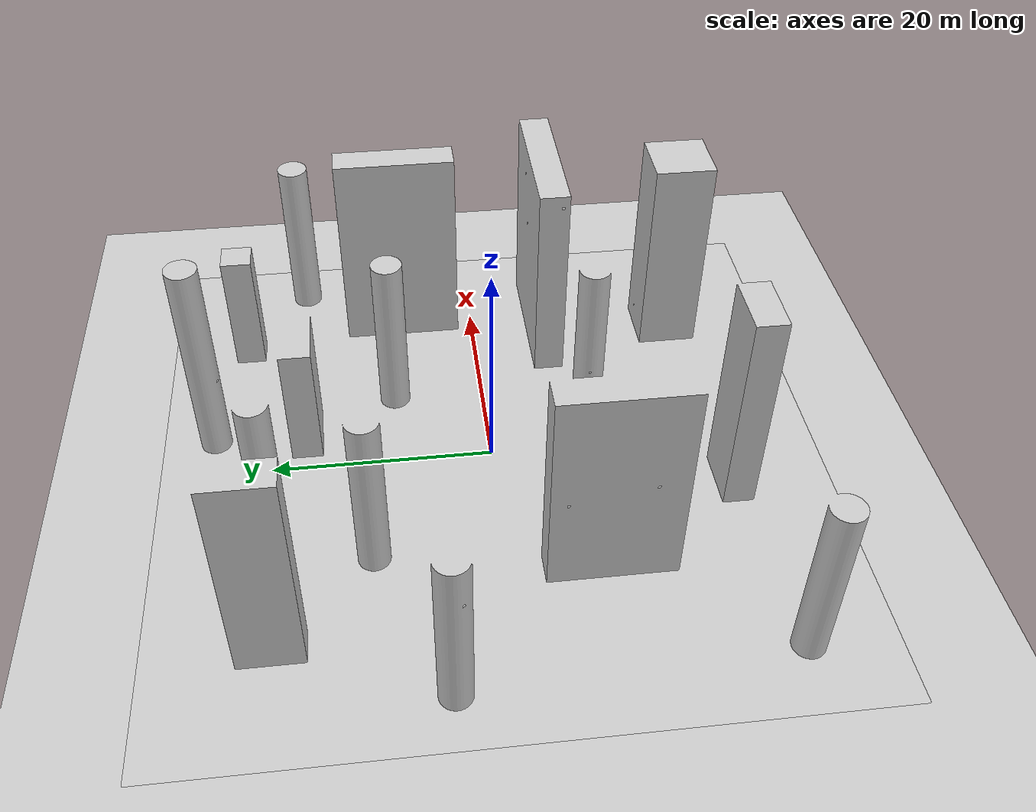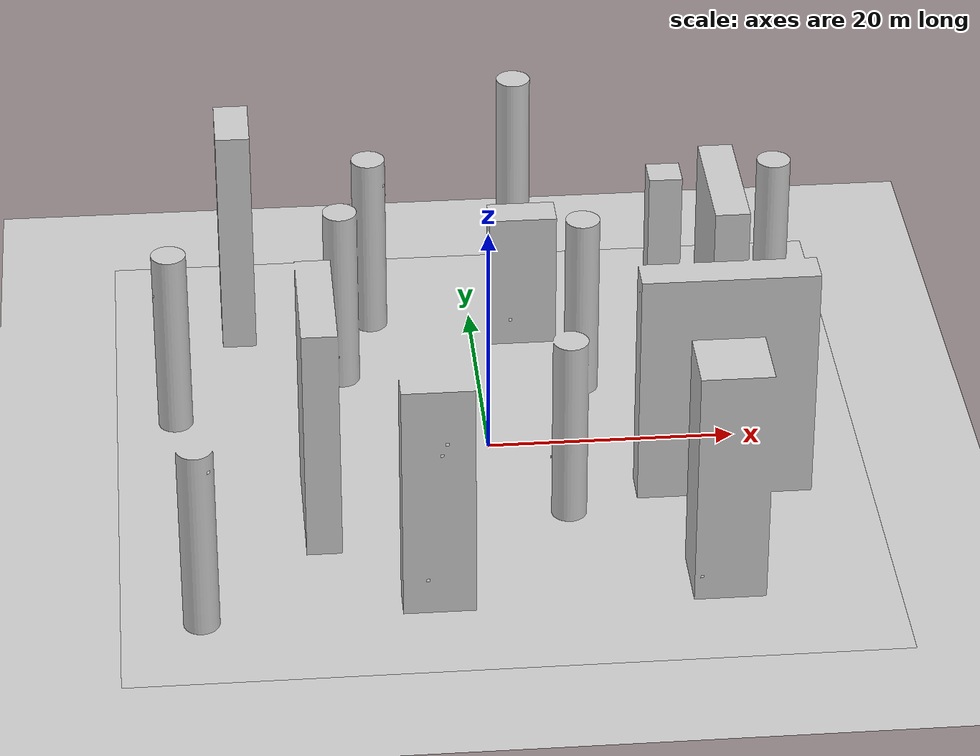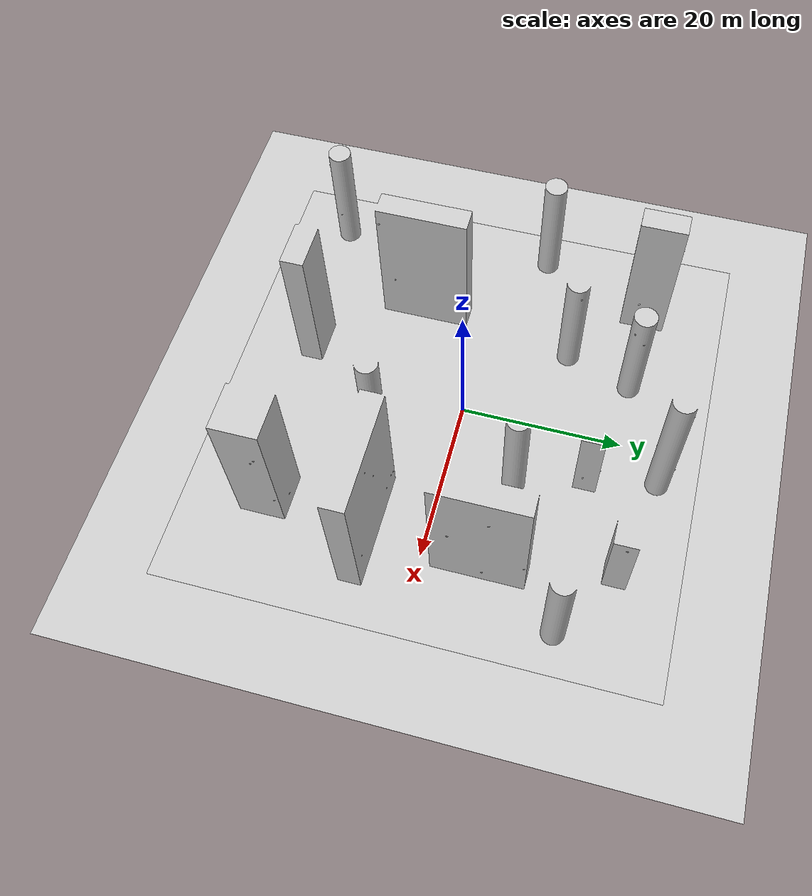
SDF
<?xml version="1.0" ?>
<sdf version="1.9">
  <world name="basic_1_world">
    <physics type="ode">
      <max_step_size>0.001</max_step_size>
      <real_time_factor>1.0</real_time_factor>
      <real_time_update_rate>1000</real_time_update_rate>
    </physics>
    <plugin name='gz::sim::systems::Physics' filename='libgz-sim-physics-system.so'/>
    <plugin name='gz::sim::systems::UserCommands' filename='libgz-sim-user-commands-system.so'/>
    <plugin name='gz::sim::systems::SceneBroadcaster' filename='libgz-sim-scene-broadcaster-system.so'/>
    <plugin name='gz::sim::systems::Contact' filename='libgz-sim-contact-system.so'/>
    <plugin name='gz::sim::systems::Imu' filename='libgz-sim-imu-system.so'/>
    <plugin name='gz::sim::systems::AirPressure' filename='libgz-sim-air-pressure-system.so'/>
    <plugin name='gz::sim::systems::Sensors' filename='libgz-sim-sensors-system.so'>
      <render_engine>ogre2</render_engine>
    </plugin>
    <gravity>0 0 -9.80665</gravity>
    <magnetic_field>6e-06 2.3e-05 -4.2e-05</magnetic_field>
    <atmosphere type='adiabatic'/>
    <scene>
      <grid>false</grid>
      <ambient>0.4 0.4 0.4 1</ambient>
      <background>0.7 0.7 0.7 1</background>
      <shadows>false</shadows>
    </scene>
    <model name="ground_plane">
      <pose>0 0 0 0 0 0</pose>
      <static>true</static>
      <link name="link">
        <collision name="collision">
          <geometry>
            <plane>
              <normal>0 0 1</normal>
              <size>60 60</size>
            </plane>
          </geometry>
        </collision>
        <visual name="visual">
          <geometry>
            <plane>
              <normal>0 0 1</normal>
              <size>60 60</size>
            </plane>
          </geometry>
          <material>
            <ambient>0.8 0.8 0.8 1</ambient>
            <diffuse>0.8 0.8 0.8 1</diffuse>
            <specular>0.8 0.8 0.8 1</specular>
          </material>
        </visual>
      </link>
    </model>
    <include>
      <pose>0 0 0 0 0 0</pose>
      <uri>model://basic_1</uri>
    </include>
    <include>
      <pose>12.702428654271504 -5.499999904632569 3.834910450213693 1.5707963267948966 0.0 3.141592653589793</pose>
      <uri>model://aruco_markers/aruco_marker_0001</uri>
    </include>
    <include>
      <pose>-26.53677144946368 4.9341911974812005 12.610715757542472 1.5707963267948966 0.0 -0.9827937232473292</pose>
      <uri>model://aruco_markers/aruco_marker_0002</uri>
    </include>
    <include>
      <pose>19.700000381469728 -18.603499007571074 13.819730767487563 1.5707963267948966 0.0 1.5707963267948966</pose>
      <uri>model://aruco_markers/aruco_marker_0003</uri>
    </include>
    <include>
      <pose>20.99147220376794 12.69999942779541 10.983474807742727 1.5707963267948966 0.0 3.141592653589793</pose>
      <uri>model://aruco_markers/aruco_marker_0004</uri>
    </include>
    <include>
      <pose>-22.818389020015463 -23.52552216607276 14.608251656985942 1.5707963267948968 0.0 0.5880026035475676</pose>
      <uri>model://aruco_markers/aruco_marker_0005</uri>
    </include>
    <include>
      <pose>19.10943586744999 -8.499999618530273 2.4491975920256004 1.5707963267948966 0.0 0.0</pose>
      <uri>model://aruco_markers/aruco_marker_0006</uri>
    </include>
    <include>
      <pose>7.1 16.400553896175786 3.1776356632876643 1.5707963267948966 0.0 1.5707963267948966</pose>
      <uri>model://aruco_markers/aruco_marker_0007</uri>
    </include>
    <include>
      <pose>-18.09999885559082 18.767426741719262 4.922351365103365 1.5707963267948966 0.0 1.5707963267948966</pose>
      <uri>model://aruco_markers/aruco_marker_0008</uri>
    </include>
    <include>
      <pose>-19.201761697927825 22.499999618530275 8.43506295016884 1.5707963267948966 0.0 3.141592653589793</pose>
      <uri>model://aruco_markers/aruco_marker_0010</uri>
    </include>
    <include>
      <pose>14.298835450998613 -5.499999904632569 3.8692448478026686 1.5707963267948966 0.0 3.141592653589793</pose>
      <uri>model://aruco_markers/aruco_marker_0011</uri>
    </include>
    <include>
      <pose>-9.882107016824866 11.901128605276266 14.594596158033001 1.5707963267948968 0.0 2.1587989303424644</pose>
      <uri>model://aruco_markers/aruco_marker_0012</uri>
    </include>
    <include>
      <pose>23.723363083169858 -5.499999904632569 5.486517175097797 1.5707963267948966 0.0 3.141592653589793</pose>
      <uri>model://aruco_markers/aruco_marker_0013</uri>
    </include>
    <include>
      <pose>18.09999885559082 8.913116619907875 7.057517749638019 1.5707963267948966 0.0 -1.5707963267948966</pose>
      <uri>model://aruco_markers/aruco_marker_0014</uri>
    </include>
    <include>
      <pose>21.1 8.153007009837204 15.505783391752267 1.5707963267948966 0.0 1.5707963267948966</pose>
      <uri>model://aruco_markers/aruco_marker_0015</uri>
    </include>
    <include>
      <pose>19.353854124921856 -5.499999904632569 17.581517980715333 1.5707963267948966 0.0 3.141592653589793</pose>
      <uri>model://aruco_markers/aruco_marker_0016</uri>
    </include>
    <include>
      <pose>14.557295467470183 -22.499999618530275 2.1794189158852433 1.5707963267948966 0.0 0.0</pose>
      <uri>model://aruco_markers/aruco_marker_0017</uri>
    </include>
    <include>
      <pose>-7.13260163215342 18.804402123010178 13.904069106795495 1.5707963267948966 0.0 0.9827937232473292</pose>
      <uri>model://aruco_markers/aruco_marker_0018</uri>
    </include>
    <include>
      <pose>21.1 12.277022506683162 6.201933181673578 1.5707963267948966 0.0 1.5707963267948966</pose>
      <uri>model://aruco_markers/aruco_marker_0019</uri>
    </include>
    <include>
      <pose>11.099999809265137 -7.752108856371327 18.84838194785489 1.5707963267948966 0.0 -1.5707963267948966</pose>
      <uri>model://aruco_markers/aruco_marker_0020</uri>
    </include>
    <include>
      <pose>11.929633547779321 -5.499999904632569 3.1640558915868824 1.5707963267948966 0.0 3.141592653589793</pose>
      <uri>model://aruco_markers/aruco_marker_0021</uri>
    </include>
    <include>
      <pose>21.1 3.6323154182830573 10.27629951566302 1.5707963267948966 0.0 1.5707963267948966</pose>
      <uri>model://aruco_markers/aruco_marker_0022</uri>
    </include>
    <include>
      <pose>-15.499999618530271 -4.257232308638194 9.26128922000307 1.5707963267948966 0.0 -1.5707963267948966</pose>
      <uri>model://aruco_markers/aruco_marker_0023</uri>
    </include>
    <include>
      <pose>-18.9312177660708 22.49999961853028 16.022186943400335 1.5707963267948966 0.0 3.141592653589793</pose>
      <uri>model://aruco_markers/aruco_marker_0024</uri>
    </include>
    <include>
      <pose>4.924056031994447 26.506129948762762 18.494969219672548 1.5707963267948966 0.0 2.677945044588987</pose>
      <uri>model://aruco_markers/aruco_marker_0026</uri>
    </include>
    <include>
      <pose>19.700000381469728 -17.27745498910447 5.160958973101901 1.5707963267948966 0.0 1.5707963267948966</pose>
      <uri>model://aruco_markers/aruco_marker_0027</uri>
    </include>
    <include>
      <pose>17.224894781155804 -16.699999237060545 2.3724380367846685 1.5707963267948966 0.0 3.141592653589793</pose>
      <uri>model://aruco_markers/aruco_marker_0029</uri>
    </include>
    <include>
      <pose>20.564278555176962 1.299999976158142 5.942494058182161 1.5707963267948966 0.0 0.0</pose>
      <uri>model://aruco_markers/aruco_marker_0030</uri>
    </include>
    <include>
      <pose>-5.316972592323724 -22.499999618530275 14.430866982960726 1.5707963267948966 0.0 0.0</pose>
      <uri>model://aruco_markers/aruco_marker_0032</uri>
    </include>
    <include>
      <pose>19.700000381469728 -18.15992895911144 14.594096745352713 1.5707963267948966 0.0 1.5707963267948966</pose>
      <uri>model://aruco_markers/aruco_marker_0033</uri>
    </include>
    <include>
      <pose>17.46705174015501 -5.499999904632569 13.124102394569338 1.5707963267948966 0.0 3.141592653589793</pose>
      <uri>model://aruco_markers/aruco_marker_0034</uri>
    </include>
    <include>
      <pose>4.645832583213066 26.624716497688866 5.558539600898748 1.5707963267948966 0.0 2.9441970937399127</pose>
      <uri>model://aruco_markers/aruco_marker_0035</uri>
    </include>
    <include>
      <pose>-4.946621592750457 -22.499999618530275 15.397087786295597 1.5707963267948966 0.0 0.0</pose>
      <uri>model://aruco_markers/aruco_marker_0036</uri>
    </include>
    <include>
      <pose>-6.980662959961518 20.064769686908686 12.302556096100915 1.5707963267948966 0.0 1.8157749899217608</pose>
      <uri>model://aruco_markers/aruco_marker_0037</uri>
    </include>
    <include>
      <pose>3.5041945770188554 23.87876843324463 8.238774175457461 1.5707963267948966 0.0 -0.46364760900080615</pose>
      <uri>model://aruco_markers/aruco_marker_0039</uri>
    </include>
    <include>
      <pose>-6.4818630962771975 -22.499999618530275 3.0664013484576986 1.5707963267948966 0.0 0.0</pose>
      <uri>model://aruco_markers/aruco_marker_0040</uri>
    </include>
    <include>
      <pose>6.117792887831811 18.29999885559082 4.016417571415747 1.5707963267948966 0.0 3.141592653589793</pose>
      <uri>model://aruco_markers/aruco_marker_0041</uri>
    </include>
    <include>
      <pose>18.29999885559082 22.627535466989926 10.937367417394455 1.5707963267948966 0.0 1.5707963267948966</pose>
      <uri>model://aruco_markers/aruco_marker_0042</uri>
    </include>
    <include>
      <pose>-12.49999942779541 -13.644215019007182 17.81908890200153 1.5707963267948966 0.0 1.5707963267948966</pose>
      <uri>model://aruco_markers/aruco_marker_0043</uri>
    </include>
    <include>
      <pose>4.1140905462170325 -9.656935313712752 5.271799122211732 1.5707963267948966 0.0 -1.5707963267948966</pose>
      <uri>model://aruco_markers/aruco_marker_0045</uri>
    </include>
    <include>
      <pose>21.099999999999998 7.574361814627923 2.2211515966081987 1.5707963267948966 0.0 1.5707963267948966</pose>
      <uri>model://aruco_markers/aruco_marker_0046</uri>
    </include>
    <include>
      <pose>-22.322504916482565 -22.62849604905869 5.636519386294875 1.5707963267948966 0.0 1.5707963267948966</pose>
      <uri>model://aruco_markers/aruco_marker_0047</uri>
    </include>
    <include>
      <pose>-12.499999427795409 -12.135182693150647 7.1635394824655965 1.5707963267948966 0.0 1.5707963267948966</pose>
      <uri>model://aruco_markers/aruco_marker_0048</uri>
    </include>
    <include>
      <pose>3.16218679690534 15.299999618530276 2.3903082238348965 1.5707963267948966 0.0 0.0</pose>
      <uri>model://aruco_markers/aruco_marker_0049</uri>
    </include>
    <include>
      <pose>-15.499999618530271 -11.29807843793042 10.58887316288271 1.5707963267948966 0.0 -1.5707963267948966</pose>
      <uri>model://aruco_markers/aruco_marker_0050</uri>
    </include>
    <light type="directional" name="sun">
      <cast_shadows>false</cast_shadows>
      <pose>0 0 100 0 0 0</pose>
      <diffuse>0.8 0.8 0.8 1</diffuse>
      <specular>0.2 0.2 0.2 1</specular>
      <attenuation>
        <range>1000</range>
        <constant>0.9</constant>
        <linear>0.01</linear>
        <quadratic>0.001</quadratic>
      </attenuation>
      <direction>-0.5 0.1 -0.9</direction>
    </light>
  </world>
</sdf>

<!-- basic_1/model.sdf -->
<sdf version="1.9">
  <model name="basic_1">
    <static>true</static>
    <link name="link">
      <collision name="collision">
        <geometry>
          <mesh>
            <uri>model://basic_1/meshes/basic_1.stl</uri>
          </mesh>
        </geometry>
      </collision>

      <!-- Attach collision sensor -->
      <sensor name="contact_sensor" type="contact">
        <always_on>1</always_on>
        <update_rate>30</update_rate>
        <contact>
          <collision>collision</collision>
        </contact>
      </sensor>

      <visual name="visual">
        <geometry>
          <mesh>
            <uri>model://basic_1/meshes/basic_1.stl</uri>
          </mesh>
        </geometry>
        <material>
            <ambient>0.8 0.8 0.8 1</ambient>
            <diffuse>0.8 0.8 0.8 1</diffuse>
            <specular>0.8 0.8 0.8 1</specular>
        </material>
      </visual>
    </link>
  </model>
</sdf>

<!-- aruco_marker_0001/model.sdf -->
<sdf version="1.9">
  <model name="aruco_marker_0001">
    <static>true</static>
    <link name="link">
      <visual name="aruco_marker_0001_vis">
        <pose>0 0 0 0 0 0</pose>
        <geometry>
          <plane>
            <normal>0 0 1</normal>
            <size>0.25 0.25</size>
          </plane>
        </geometry>
        <material>
          <pbr>
            <metal>
              <albedo_map>marker_0001.png</albedo_map>
              <metalness>0.0</metalness>
            </metal>
          </pbr>
          <ambient>1 1 1 1</ambient>
          <diffuse>1 1 1 1</diffuse>
          <specular>0 0 0 1</specular>
        </material>
      </visual>
    </link>
  </model>
</sdf>

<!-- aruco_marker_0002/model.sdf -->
<sdf version="1.9">
  <model name="aruco_marker_0002">
    <static>true</static>
    <link name="link">
      <visual name="aruco_marker_0002_vis">
        <pose>0 0 0 0 0 0</pose>
        <geometry>
          <plane>
            <normal>0 0 1</normal>
            <size>0.25 0.25</size>
          </plane>
        </geometry>
        <material>
          <pbr>
            <metal>
              <albedo_map>marker_0002.png</albedo_map>
              <metalness>0.0</metalness>
            </metal>
          </pbr>
          <ambient>1 1 1 1</ambient>
          <diffuse>1 1 1 1</diffuse>
          <specular>0 0 0 1</specular>
        </material>
      </visual>
    </link>
  </model>
</sdf>

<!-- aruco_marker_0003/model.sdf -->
<sdf version="1.9">
  <model name="aruco_marker_0003">
    <static>true</static>
    <link name="link">
      <visual name="aruco_marker_0003_vis">
        <pose>0 0 0 0 0 0</pose>
        <geometry>
          <plane>
            <normal>0 0 1</normal>
            <size>0.25 0.25</size>
          </plane>
        </geometry>
        <material>
          <pbr>
            <metal>
              <albedo_map>marker_0003.png</albedo_map>
              <metalness>0.0</metalness>
            </metal>
          </pbr>
          <ambient>1 1 1 1</ambient>
          <diffuse>1 1 1 1</diffuse>
          <specular>0 0 0 1</specular>
        </material>
      </visual>
    </link>
  </model>
</sdf>

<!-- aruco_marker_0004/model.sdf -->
<sdf version="1.9">
  <model name="aruco_marker_0004">
    <static>true</static>
    <link name="link">
      <visual name="aruco_marker_0004_vis">
        <pose>0 0 0 0 0 0</pose>
        <geometry>
          <plane>
            <normal>0 0 1</normal>
            <size>0.25 0.25</size>
          </plane>
        </geometry>
        <material>
          <pbr>
            <metal>
              <albedo_map>marker_0004.png</albedo_map>
              <metalness>0.0</metalness>
            </metal>
          </pbr>
          <ambient>1 1 1 1</ambient>
          <diffuse>1 1 1 1</diffuse>
          <specular>0 0 0 1</specular>
        </material>
      </visual>
    </link>
  </model>
</sdf>

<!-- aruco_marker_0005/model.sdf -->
<sdf version="1.9">
  <model name="aruco_marker_0005">
    <static>true</static>
    <link name="link">
      <visual name="aruco_marker_0005_vis">
        <pose>0 0 0 0 0 0</pose>
        <geometry>
          <plane>
            <normal>0 0 1</normal>
            <size>0.25 0.25</size>
          </plane>
        </geometry>
        <material>
          <pbr>
            <metal>
              <albedo_map>marker_0005.png</albedo_map>
              <metalness>0.0</metalness>
            </metal>
          </pbr>
          <ambient>1 1 1 1</ambient>
          <diffuse>1 1 1 1</diffuse>
          <specular>0 0 0 1</specular>
        </material>
      </visual>
    </link>
  </model>
</sdf>

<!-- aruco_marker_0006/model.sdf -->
<sdf version="1.9">
  <model name="aruco_marker_0006">
    <static>true</static>
    <link name="link">
      <visual name="aruco_marker_0006_vis">
        <pose>0 0 0 0 0 0</pose>
        <geometry>
          <plane>
            <normal>0 0 1</normal>
            <size>0.25 0.25</size>
          </plane>
        </geometry>
        <material>
          <pbr>
            <metal>
              <albedo_map>marker_0006.png</albedo_map>
              <metalness>0.0</metalness>
            </metal>
          </pbr>
          <ambient>1 1 1 1</ambient>
          <diffuse>1 1 1 1</diffuse>
          <specular>0 0 0 1</specular>
        </material>
      </visual>
    </link>
  </model>
</sdf>

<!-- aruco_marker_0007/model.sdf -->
<sdf version="1.9">
  <model name="aruco_marker_0007">
    <static>true</static>
    <link name="link">
      <visual name="aruco_marker_0007_vis">
        <pose>0 0 0 0 0 0</pose>
        <geometry>
          <plane>
            <normal>0 0 1</normal>
            <size>0.25 0.25</size>
          </plane>
        </geometry>
        <material>
          <pbr>
            <metal>
              <albedo_map>marker_0007.png</albedo_map>
              <metalness>0.0</metalness>
            </metal>
          </pbr>
          <ambient>1 1 1 1</ambient>
          <diffuse>1 1 1 1</diffuse>
          <specular>0 0 0 1</specular>
        </material>
      </visual>
    </link>
  </model>
</sdf>

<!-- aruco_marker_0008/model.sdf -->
<sdf version="1.9">
  <model name="aruco_marker_0008">
    <static>true</static>
    <link name="link">
      <visual name="aruco_marker_0008_vis">
        <pose>0 0 0 0 0 0</pose>
        <geometry>
          <plane>
            <normal>0 0 1</normal>
            <size>0.25 0.25</size>
          </plane>
        </geometry>
        <material>
          <pbr>
            <metal>
              <albedo_map>marker_0008.png</albedo_map>
              <metalness>0.0</metalness>
            </metal>
          </pbr>
          <ambient>1 1 1 1</ambient>
          <diffuse>1 1 1 1</diffuse>
          <specular>0 0 0 1</specular>
        </material>
      </visual>
    </link>
  </model>
</sdf>

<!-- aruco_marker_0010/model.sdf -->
<sdf version="1.9">
  <model name="aruco_marker_0010">
    <static>true</static>
    <link name="link">
      <visual name="aruco_marker_0010_vis">
        <pose>0 0 0 0 0 0</pose>
        <geometry>
          <plane>
            <normal>0 0 1</normal>
            <size>0.25 0.25</size>
          </plane>
        </geometry>
        <material>
          <pbr>
            <metal>
              <albedo_map>marker_0010.png</albedo_map>
              <metalness>0.0</metalness>
            </metal>
          </pbr>
          <ambient>1 1 1 1</ambient>
          <diffuse>1 1 1 1</diffuse>
          <specular>0 0 0 1</specular>
        </material>
      </visual>
    </link>
  </model>
</sdf>

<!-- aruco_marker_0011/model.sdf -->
<sdf version="1.9">
  <model name="aruco_marker_0011">
    <static>true</static>
    <link name="link">
      <visual name="aruco_marker_0011_vis">
        <pose>0 0 0 0 0 0</pose>
        <geometry>
          <plane>
            <normal>0 0 1</normal>
            <size>0.25 0.25</size>
          </plane>
        </geometry>
        <material>
          <pbr>
            <metal>
              <albedo_map>marker_0011.png</albedo_map>
              <metalness>0.0</metalness>
            </metal>
          </pbr>
          <ambient>1 1 1 1</ambient>
          <diffuse>1 1 1 1</diffuse>
          <specular>0 0 0 1</specular>
        </material>
      </visual>
    </link>
  </model>
</sdf>

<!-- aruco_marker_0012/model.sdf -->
<sdf version="1.9">
  <model name="aruco_marker_0012">
    <static>true</static>
    <link name="link">
      <visual name="aruco_marker_0012_vis">
        <pose>0 0 0 0 0 0</pose>
        <geometry>
          <plane>
            <normal>0 0 1</normal>
            <size>0.25 0.25</size>
          </plane>
        </geometry>
        <material>
          <pbr>
            <metal>
              <albedo_map>marker_0012.png</albedo_map>
              <metalness>0.0</metalness>
            </metal>
          </pbr>
          <ambient>1 1 1 1</ambient>
          <diffuse>1 1 1 1</diffuse>
          <specular>0 0 0 1</specular>
        </material>
      </visual>
    </link>
  </model>
</sdf>

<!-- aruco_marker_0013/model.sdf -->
<sdf version="1.9">
  <model name="aruco_marker_0013">
    <static>true</static>
    <link name="link">
      <visual name="aruco_marker_0013_vis">
        <pose>0 0 0 0 0 0</pose>
        <geometry>
          <plane>
            <normal>0 0 1</normal>
            <size>0.25 0.25</size>
          </plane>
        </geometry>
        <material>
          <pbr>
            <metal>
              <albedo_map>marker_0013.png</albedo_map>
              <metalness>0.0</metalness>
            </metal>
          </pbr>
          <ambient>1 1 1 1</ambient>
          <diffuse>1 1 1 1</diffuse>
          <specular>0 0 0 1</specular>
        </material>
      </visual>
    </link>
  </model>
</sdf>

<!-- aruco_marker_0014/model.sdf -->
<sdf version="1.9">
  <model name="aruco_marker_0014">
    <static>true</static>
    <link name="link">
      <visual name="aruco_marker_0014_vis">
        <pose>0 0 0 0 0 0</pose>
        <geometry>
          <plane>
            <normal>0 0 1</normal>
            <size>0.25 0.25</size>
          </plane>
        </geometry>
        <material>
          <pbr>
            <metal>
              <albedo_map>marker_0014.png</albedo_map>
              <metalness>0.0</metalness>
            </metal>
          </pbr>
          <ambient>1 1 1 1</ambient>
          <diffuse>1 1 1 1</diffuse>
          <specular>0 0 0 1</specular>
        </material>
      </visual>
    </link>
  </model>
</sdf>

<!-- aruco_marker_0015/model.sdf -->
<sdf version="1.9">
  <model name="aruco_marker_0015">
    <static>true</static>
    <link name="link">
      <visual name="aruco_marker_0015_vis">
        <pose>0 0 0 0 0 0</pose>
        <geometry>
          <plane>
            <normal>0 0 1</normal>
            <size>0.25 0.25</size>
          </plane>
        </geometry>
        <material>
          <pbr>
            <metal>
              <albedo_map>marker_0015.png</albedo_map>
              <metalness>0.0</metalness>
            </metal>
          </pbr>
          <ambient>1 1 1 1</ambient>
          <diffuse>1 1 1 1</diffuse>
          <specular>0 0 0 1</specular>
        </material>
      </visual>
    </link>
  </model>
</sdf>

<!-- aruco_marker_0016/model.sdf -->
<sdf version="1.9">
  <model name="aruco_marker_0016">
    <static>true</static>
    <link name="link">
      <visual name="aruco_marker_0016_vis">
        <pose>0 0 0 0 0 0</pose>
        <geometry>
          <plane>
            <normal>0 0 1</normal>
            <size>0.25 0.25</size>
          </plane>
        </geometry>
        <material>
          <pbr>
            <metal>
              <albedo_map>marker_0016.png</albedo_map>
              <metalness>0.0</metalness>
            </metal>
          </pbr>
          <ambient>1 1 1 1</ambient>
          <diffuse>1 1 1 1</diffuse>
          <specular>0 0 0 1</specular>
        </material>
      </visual>
    </link>
  </model>
</sdf>

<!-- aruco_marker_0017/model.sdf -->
<sdf version="1.9">
  <model name="aruco_marker_0017">
    <static>true</static>
    <link name="link">
      <visual name="aruco_marker_0017_vis">
        <pose>0 0 0 0 0 0</pose>
        <geometry>
          <plane>
            <normal>0 0 1</normal>
            <size>0.25 0.25</size>
          </plane>
        </geometry>
        <material>
          <pbr>
            <metal>
              <albedo_map>marker_0017.png</albedo_map>
              <metalness>0.0</metalness>
            </metal>
          </pbr>
          <ambient>1 1 1 1</ambient>
          <diffuse>1 1 1 1</diffuse>
          <specular>0 0 0 1</specular>
        </material>
      </visual>
    </link>
  </model>
</sdf>

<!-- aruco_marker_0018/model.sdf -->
<sdf version="1.9">
  <model name="aruco_marker_0018">
    <static>true</static>
    <link name="link">
      <visual name="aruco_marker_0018_vis">
        <pose>0 0 0 0 0 0</pose>
        <geometry>
          <plane>
            <normal>0 0 1</normal>
            <size>0.25 0.25</size>
          </plane>
        </geometry>
        <material>
          <pbr>
            <metal>
              <albedo_map>marker_0018.png</albedo_map>
              <metalness>0.0</metalness>
            </metal>
          </pbr>
          <ambient>1 1 1 1</ambient>
          <diffuse>1 1 1 1</diffuse>
          <specular>0 0 0 1</specular>
        </material>
      </visual>
    </link>
  </model>
</sdf>

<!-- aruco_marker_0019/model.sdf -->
<sdf version="1.9">
  <model name="aruco_marker_0019">
    <static>true</static>
    <link name="link">
      <visual name="aruco_marker_0019_vis">
        <pose>0 0 0 0 0 0</pose>
        <geometry>
          <plane>
            <normal>0 0 1</normal>
            <size>0.25 0.25</size>
          </plane>
        </geometry>
        <material>
          <pbr>
            <metal>
              <albedo_map>marker_0019.png</albedo_map>
              <metalness>0.0</metalness>
            </metal>
          </pbr>
          <ambient>1 1 1 1</ambient>
          <diffuse>1 1 1 1</diffuse>
          <specular>0 0 0 1</specular>
        </material>
      </visual>
    </link>
  </model>
</sdf>

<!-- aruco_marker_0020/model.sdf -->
<sdf version="1.9">
  <model name="aruco_marker_0020">
    <static>true</static>
    <link name="link">
      <visual name="aruco_marker_0020_vis">
        <pose>0 0 0 0 0 0</pose>
        <geometry>
          <plane>
            <normal>0 0 1</normal>
            <size>0.25 0.25</size>
          </plane>
        </geometry>
        <material>
          <pbr>
            <metal>
              <albedo_map>marker_0020.png</albedo_map>
              <metalness>0.0</metalness>
            </metal>
          </pbr>
          <ambient>1 1 1 1</ambient>
          <diffuse>1 1 1 1</diffuse>
          <specular>0 0 0 1</specular>
        </material>
      </visual>
    </link>
  </model>
</sdf>

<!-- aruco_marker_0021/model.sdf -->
<sdf version="1.9">
  <model name="aruco_marker_0021">
    <static>true</static>
    <link name="link">
      <visual name="aruco_marker_0021_vis">
        <pose>0 0 0 0 0 0</pose>
        <geometry>
          <plane>
            <normal>0 0 1</normal>
            <size>0.25 0.25</size>
          </plane>
        </geometry>
        <material>
          <pbr>
            <metal>
              <albedo_map>marker_0021.png</albedo_map>
              <metalness>0.0</metalness>
            </metal>
          </pbr>
          <ambient>1 1 1 1</ambient>
          <diffuse>1 1 1 1</diffuse>
          <specular>0 0 0 1</specular>
        </material>
      </visual>
    </link>
  </model>
</sdf>

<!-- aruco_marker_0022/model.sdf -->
<sdf version="1.9">
  <model name="aruco_marker_0022">
    <static>true</static>
    <link name="link">
      <visual name="aruco_marker_0022_vis">
        <pose>0 0 0 0 0 0</pose>
        <geometry>
          <plane>
            <normal>0 0 1</normal>
            <size>0.25 0.25</size>
          </plane>
        </geometry>
        <material>
          <pbr>
            <metal>
              <albedo_map>marker_0022.png</albedo_map>
              <metalness>0.0</metalness>
            </metal>
          </pbr>
          <ambient>1 1 1 1</ambient>
          <diffuse>1 1 1 1</diffuse>
          <specular>0 0 0 1</specular>
        </material>
      </visual>
    </link>
  </model>
</sdf>

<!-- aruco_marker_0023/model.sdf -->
<sdf version="1.9">
  <model name="aruco_marker_0023">
    <static>true</static>
    <link name="link">
      <visual name="aruco_marker_0023_vis">
        <pose>0 0 0 0 0 0</pose>
        <geometry>
          <plane>
            <normal>0 0 1</normal>
            <size>0.25 0.25</size>
          </plane>
        </geometry>
        <material>
          <pbr>
            <metal>
              <albedo_map>marker_0023.png</albedo_map>
              <metalness>0.0</metalness>
            </metal>
          </pbr>
          <ambient>1 1 1 1</ambient>
          <diffuse>1 1 1 1</diffuse>
          <specular>0 0 0 1</specular>
        </material>
      </visual>
    </link>
  </model>
</sdf>

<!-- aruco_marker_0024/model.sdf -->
<sdf version="1.9">
  <model name="aruco_marker_0024">
    <static>true</static>
    <link name="link">
      <visual name="aruco_marker_0024_vis">
        <pose>0 0 0 0 0 0</pose>
        <geometry>
          <plane>
            <normal>0 0 1</normal>
            <size>0.25 0.25</size>
          </plane>
        </geometry>
        <material>
          <pbr>
            <metal>
              <albedo_map>marker_0024.png</albedo_map>
              <metalness>0.0</metalness>
            </metal>
          </pbr>
          <ambient>1 1 1 1</ambient>
          <diffuse>1 1 1 1</diffuse>
          <specular>0 0 0 1</specular>
        </material>
      </visual>
    </link>
  </model>
</sdf>

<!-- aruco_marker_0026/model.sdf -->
<sdf version="1.9">
  <model name="aruco_marker_0026">
    <static>true</static>
    <link name="link">
      <visual name="aruco_marker_0026_vis">
        <pose>0 0 0 0 0 0</pose>
        <geometry>
          <plane>
            <normal>0 0 1</normal>
            <size>0.25 0.25</size>
          </plane>
        </geometry>
        <material>
          <pbr>
            <metal>
              <albedo_map>marker_0026.png</albedo_map>
              <metalness>0.0</metalness>
            </metal>
          </pbr>
          <ambient>1 1 1 1</ambient>
          <diffuse>1 1 1 1</diffuse>
          <specular>0 0 0 1</specular>
        </material>
      </visual>
    </link>
  </model>
</sdf>

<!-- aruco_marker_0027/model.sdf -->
<sdf version="1.9">
  <model name="aruco_marker_0027">
    <static>true</static>
    <link name="link">
      <visual name="aruco_marker_0027_vis">
        <pose>0 0 0 0 0 0</pose>
        <geometry>
          <plane>
            <normal>0 0 1</normal>
            <size>0.25 0.25</size>
          </plane>
        </geometry>
        <material>
          <pbr>
            <metal>
              <albedo_map>marker_0027.png</albedo_map>
              <metalness>0.0</metalness>
            </metal>
          </pbr>
          <ambient>1 1 1 1</ambient>
          <diffuse>1 1 1 1</diffuse>
          <specular>0 0 0 1</specular>
        </material>
      </visual>
    </link>
  </model>
</sdf>

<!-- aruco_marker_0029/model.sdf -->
<sdf version="1.9">
  <model name="aruco_marker_0029">
    <static>true</static>
    <link name="link">
      <visual name="aruco_marker_0029_vis">
        <pose>0 0 0 0 0 0</pose>
        <geometry>
          <plane>
            <normal>0 0 1</normal>
            <size>0.25 0.25</size>
          </plane>
        </geometry>
        <material>
          <pbr>
            <metal>
              <albedo_map>marker_0029.png</albedo_map>
              <metalness>0.0</metalness>
            </metal>
          </pbr>
          <ambient>1 1 1 1</ambient>
          <diffuse>1 1 1 1</diffuse>
          <specular>0 0 0 1</specular>
        </material>
      </visual>
    </link>
  </model>
</sdf>

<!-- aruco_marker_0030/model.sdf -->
<sdf version="1.9">
  <model name="aruco_marker_0030">
    <static>true</static>
    <link name="link">
      <visual name="aruco_marker_0030_vis">
        <pose>0 0 0 0 0 0</pose>
        <geometry>
          <plane>
            <normal>0 0 1</normal>
            <size>0.25 0.25</size>
          </plane>
        </geometry>
        <material>
          <pbr>
            <metal>
              <albedo_map>marker_0030.png</albedo_map>
              <metalness>0.0</metalness>
            </metal>
          </pbr>
          <ambient>1 1 1 1</ambient>
          <diffuse>1 1 1 1</diffuse>
          <specular>0 0 0 1</specular>
        </material>
      </visual>
    </link>
  </model>
</sdf>

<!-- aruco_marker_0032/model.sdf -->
<sdf version="1.9">
  <model name="aruco_marker_0032">
    <static>true</static>
    <link name="link">
      <visual name="aruco_marker_0032_vis">
        <pose>0 0 0 0 0 0</pose>
        <geometry>
          <plane>
            <normal>0 0 1</normal>
            <size>0.25 0.25</size>
          </plane>
        </geometry>
        <material>
          <pbr>
            <metal>
              <albedo_map>marker_0032.png</albedo_map>
              <metalness>0.0</metalness>
            </metal>
          </pbr>
          <ambient>1 1 1 1</ambient>
          <diffuse>1 1 1 1</diffuse>
          <specular>0 0 0 1</specular>
        </material>
      </visual>
    </link>
  </model>
</sdf>

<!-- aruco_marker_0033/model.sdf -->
<sdf version="1.9">
  <model name="aruco_marker_0033">
    <static>true</static>
    <link name="link">
      <visual name="aruco_marker_0033_vis">
        <pose>0 0 0 0 0 0</pose>
        <geometry>
          <plane>
            <normal>0 0 1</normal>
            <size>0.25 0.25</size>
          </plane>
        </geometry>
        <material>
          <pbr>
            <metal>
              <albedo_map>marker_0033.png</albedo_map>
              <metalness>0.0</metalness>
            </metal>
          </pbr>
          <ambient>1 1 1 1</ambient>
          <diffuse>1 1 1 1</diffuse>
          <specular>0 0 0 1</specular>
        </material>
      </visual>
    </link>
  </model>
</sdf>

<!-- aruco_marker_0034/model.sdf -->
<sdf version="1.9">
  <model name="aruco_marker_0034">
    <static>true</static>
    <link name="link">
      <visual name="aruco_marker_0034_vis">
        <pose>0 0 0 0 0 0</pose>
        <geometry>
          <plane>
            <normal>0 0 1</normal>
            <size>0.25 0.25</size>
          </plane>
        </geometry>
        <material>
          <pbr>
            <metal>
              <albedo_map>marker_0034.png</albedo_map>
              <metalness>0.0</metalness>
            </metal>
          </pbr>
          <ambient>1 1 1 1</ambient>
          <diffuse>1 1 1 1</diffuse>
          <specular>0 0 0 1</specular>
        </material>
      </visual>
    </link>
  </model>
</sdf>

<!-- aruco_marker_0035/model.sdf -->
<sdf version="1.9">
  <model name="aruco_marker_0035">
    <static>true</static>
    <link name="link">
      <visual name="aruco_marker_0035_vis">
        <pose>0 0 0 0 0 0</pose>
        <geometry>
          <plane>
            <normal>0 0 1</normal>
            <size>0.25 0.25</size>
          </plane>
        </geometry>
        <material>
          <pbr>
            <metal>
              <albedo_map>marker_0035.png</albedo_map>
              <metalness>0.0</metalness>
            </metal>
          </pbr>
          <ambient>1 1 1 1</ambient>
          <diffuse>1 1 1 1</diffuse>
          <specular>0 0 0 1</specular>
        </material>
      </visual>
    </link>
  </model>
</sdf>

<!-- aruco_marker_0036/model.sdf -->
<sdf version="1.9">
  <model name="aruco_marker_0036">
    <static>true</static>
    <link name="link">
      <visual name="aruco_marker_0036_vis">
        <pose>0 0 0 0 0 0</pose>
        <geometry>
          <plane>
            <normal>0 0 1</normal>
            <size>0.25 0.25</size>
          </plane>
        </geometry>
        <material>
          <pbr>
            <metal>
              <albedo_map>marker_0036.png</albedo_map>
              <metalness>0.0</metalness>
            </metal>
          </pbr>
          <ambient>1 1 1 1</ambient>
          <diffuse>1 1 1 1</diffuse>
          <specular>0 0 0 1</specular>
        </material>
      </visual>
    </link>
  </model>
</sdf>

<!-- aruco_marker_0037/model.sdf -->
<sdf version="1.9">
  <model name="aruco_marker_0037">
    <static>true</static>
    <link name="link">
      <visual name="aruco_marker_0037_vis">
        <pose>0 0 0 0 0 0</pose>
        <geometry>
          <plane>
            <normal>0 0 1</normal>
            <size>0.25 0.25</size>
          </plane>
        </geometry>
        <material>
          <pbr>
            <metal>
              <albedo_map>marker_0037.png</albedo_map>
              <metalness>0.0</metalness>
            </metal>
          </pbr>
          <ambient>1 1 1 1</ambient>
          <diffuse>1 1 1 1</diffuse>
          <specular>0 0 0 1</specular>
        </material>
      </visual>
    </link>
  </model>
</sdf>

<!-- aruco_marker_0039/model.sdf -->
<sdf version="1.9">
  <model name="aruco_marker_0039">
    <static>true</static>
    <link name="link">
      <visual name="aruco_marker_0039_vis">
        <pose>0 0 0 0 0 0</pose>
        <geometry>
          <plane>
            <normal>0 0 1</normal>
            <size>0.25 0.25</size>
          </plane>
        </geometry>
        <material>
          <pbr>
            <metal>
              <albedo_map>marker_0039.png</albedo_map>
              <metalness>0.0</metalness>
            </metal>
          </pbr>
          <ambient>1 1 1 1</ambient>
          <diffuse>1 1 1 1</diffuse>
          <specular>0 0 0 1</specular>
        </material>
      </visual>
    </link>
  </model>
</sdf>

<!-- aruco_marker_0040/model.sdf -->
<sdf version="1.9">
  <model name="aruco_marker_0040">
    <static>true</static>
    <link name="link">
      <visual name="aruco_marker_0040_vis">
        <pose>0 0 0 0 0 0</pose>
        <geometry>
          <plane>
            <normal>0 0 1</normal>
            <size>0.25 0.25</size>
          </plane>
        </geometry>
        <material>
          <pbr>
            <metal>
              <albedo_map>marker_0040.png</albedo_map>
              <metalness>0.0</metalness>
            </metal>
          </pbr>
          <ambient>1 1 1 1</ambient>
          <diffuse>1 1 1 1</diffuse>
          <specular>0 0 0 1</specular>
        </material>
      </visual>
    </link>
  </model>
</sdf>

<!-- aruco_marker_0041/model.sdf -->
<sdf version="1.9">
  <model name="aruco_marker_0041">
    <static>true</static>
    <link name="link">
      <visual name="aruco_marker_0041_vis">
        <pose>0 0 0 0 0 0</pose>
        <geometry>
          <plane>
            <normal>0 0 1</normal>
            <size>0.25 0.25</size>
          </plane>
        </geometry>
        <material>
          <pbr>
            <metal>
              <albedo_map>marker_0041.png</albedo_map>
              <metalness>0.0</metalness>
            </metal>
          </pbr>
          <ambient>1 1 1 1</ambient>
          <diffuse>1 1 1 1</diffuse>
          <specular>0 0 0 1</specular>
        </material>
      </visual>
    </link>
  </model>
</sdf>

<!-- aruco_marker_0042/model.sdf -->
<sdf version="1.9">
  <model name="aruco_marker_0042">
    <static>true</static>
    <link name="link">
      <visual name="aruco_marker_0042_vis">
        <pose>0 0 0 0 0 0</pose>
        <geometry>
          <plane>
            <normal>0 0 1</normal>
            <size>0.25 0.25</size>
          </plane>
        </geometry>
        <material>
          <pbr>
            <metal>
              <albedo_map>marker_0042.png</albedo_map>
              <metalness>0.0</metalness>
            </metal>
          </pbr>
          <ambient>1 1 1 1</ambient>
          <diffuse>1 1 1 1</diffuse>
          <specular>0 0 0 1</specular>
        </material>
      </visual>
    </link>
  </model>
</sdf>

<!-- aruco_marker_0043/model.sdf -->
<sdf version="1.9">
  <model name="aruco_marker_0043">
    <static>true</static>
    <link name="link">
      <visual name="aruco_marker_0043_vis">
        <pose>0 0 0 0 0 0</pose>
        <geometry>
          <plane>
            <normal>0 0 1</normal>
            <size>0.25 0.25</size>
          </plane>
        </geometry>
        <material>
          <pbr>
            <metal>
              <albedo_map>marker_0043.png</albedo_map>
              <metalness>0.0</metalness>
            </metal>
          </pbr>
          <ambient>1 1 1 1</ambient>
          <diffuse>1 1 1 1</diffuse>
          <specular>0 0 0 1</specular>
        </material>
      </visual>
    </link>
  </model>
</sdf>

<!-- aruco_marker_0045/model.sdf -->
<sdf version="1.9">
  <model name="aruco_marker_0045">
    <static>true</static>
    <link name="link">
      <visual name="aruco_marker_0045_vis">
        <pose>0 0 0 0 0 0</pose>
        <geometry>
          <plane>
            <normal>0 0 1</normal>
            <size>0.25 0.25</size>
          </plane>
        </geometry>
        <material>
          <pbr>
            <metal>
              <albedo_map>marker_0045.png</albedo_map>
              <metalness>0.0</metalness>
            </metal>
          </pbr>
          <ambient>1 1 1 1</ambient>
          <diffuse>1 1 1 1</diffuse>
          <specular>0 0 0 1</specular>
        </material>
      </visual>
    </link>
  </model>
</sdf>

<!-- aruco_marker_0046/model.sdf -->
<sdf version="1.9">
  <model name="aruco_marker_0046">
    <static>true</static>
    <link name="link">
      <visual name="aruco_marker_0046_vis">
        <pose>0 0 0 0 0 0</pose>
        <geometry>
          <plane>
            <normal>0 0 1</normal>
            <size>0.25 0.25</size>
          </plane>
        </geometry>
        <material>
          <pbr>
            <metal>
              <albedo_map>marker_0046.png</albedo_map>
              <metalness>0.0</metalness>
            </metal>
          </pbr>
          <ambient>1 1 1 1</ambient>
          <diffuse>1 1 1 1</diffuse>
          <specular>0 0 0 1</specular>
        </material>
      </visual>
    </link>
  </model>
</sdf>

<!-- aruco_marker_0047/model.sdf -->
<sdf version="1.9">
  <model name="aruco_marker_0047">
    <static>true</static>
    <link name="link">
      <visual name="aruco_marker_0047_vis">
        <pose>0 0 0 0 0 0</pose>
        <geometry>
          <plane>
            <normal>0 0 1</normal>
            <size>0.25 0.25</size>
          </plane>
        </geometry>
        <material>
          <pbr>
            <metal>
              <albedo_map>marker_0047.png</albedo_map>
              <metalness>0.0</metalness>
            </metal>
          </pbr>
          <ambient>1 1 1 1</ambient>
          <diffuse>1 1 1 1</diffuse>
          <specular>0 0 0 1</specular>
        </material>
      </visual>
    </link>
  </model>
</sdf>

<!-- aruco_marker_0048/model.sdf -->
<sdf version="1.9">
  <model name="aruco_marker_0048">
    <static>true</static>
    <link name="link">
      <visual name="aruco_marker_0048_vis">
        <pose>0 0 0 0 0 0</pose>
        <geometry>
          <plane>
            <normal>0 0 1</normal>
            <size>0.25 0.25</size>
          </plane>
        </geometry>
        <material>
          <pbr>
            <metal>
              <albedo_map>marker_0048.png</albedo_map>
              <metalness>0.0</metalness>
            </metal>
          </pbr>
          <ambient>1 1 1 1</ambient>
          <diffuse>1 1 1 1</diffuse>
          <specular>0 0 0 1</specular>
        </material>
      </visual>
    </link>
  </model>
</sdf>

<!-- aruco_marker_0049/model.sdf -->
<sdf version="1.9">
  <model name="aruco_marker_0049">
    <static>true</static>
    <link name="link">
      <visual name="aruco_marker_0049_vis">
        <pose>0 0 0 0 0 0</pose>
        <geometry>
          <plane>
            <normal>0 0 1</normal>
            <size>0.25 0.25</size>
          </plane>
        </geometry>
        <material>
          <pbr>
            <metal>
              <albedo_map>marker_0049.png</albedo_map>
              <metalness>0.0</metalness>
            </metal>
          </pbr>
          <ambient>1 1 1 1</ambient>
          <diffuse>1 1 1 1</diffuse>
          <specular>0 0 0 1</specular>
        </material>
      </visual>
    </link>
  </model>
</sdf>

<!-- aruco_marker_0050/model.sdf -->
<sdf version="1.9">
  <model name="aruco_marker_0050">
    <static>true</static>
    <link name="link">
      <visual name="aruco_marker_0050_vis">
        <pose>0 0 0 0 0 0</pose>
        <geometry>
          <plane>
            <normal>0 0 1</normal>
            <size>0.25 0.25</size>
          </plane>
        </geometry>
        <material>
          <pbr>
            <metal>
              <albedo_map>marker_0050.png</albedo_map>
              <metalness>0.0</metalness>
            </metal>
          </pbr>
          <ambient>1 1 1 1</ambient>
          <diffuse>1 1 1 1</diffuse>
          <specular>0 0 0 1</specular>
        </material>
      </visual>
    </link>
  </model>
</sdf>
